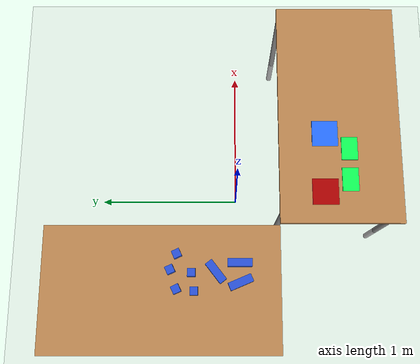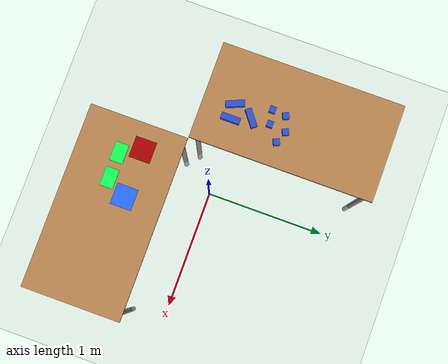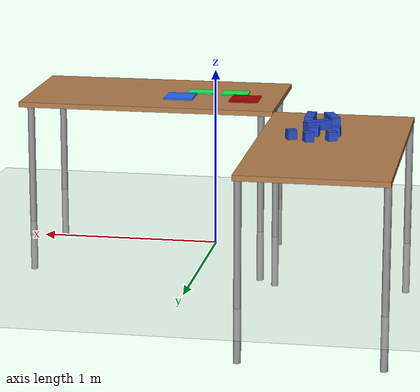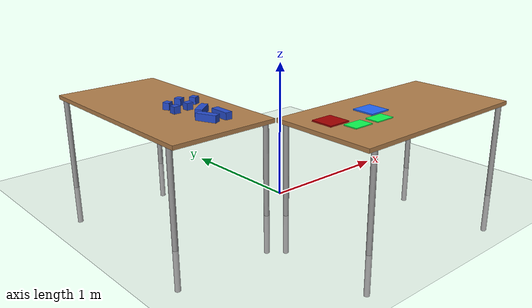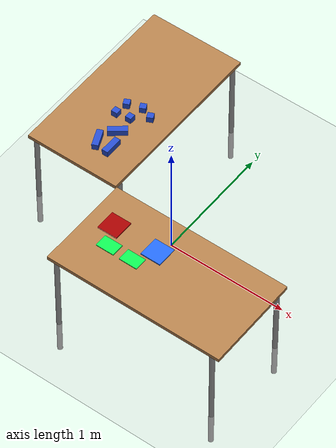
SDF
<sdf version="1.7">
 <world name="default">
  <light name="sun" type="directional">
   <pose>0 0 10 0 -0 0</pose>
   <diffuse>0.8 0.8 0.8 1</diffuse>
   <specular>0.2 0.2 0.2 1</specular>
   <attenuation>
    <range>1000</range>
    <constant>0.9</constant>
    <linear>0.01</linear>
    <quadratic>0.001</quadratic>
   </attenuation>
   <direction>-0.5 0.1 -0.9</direction>
   <spot><inner_angle>0</inner_angle><outer_angle>0</outer_angle><falloff>0</falloff></spot>
  </light>
  <model name="ground_plane">
   <static>1</static>
   <link name="link">
    <collision name="collision">
     <geometry><plane><normal>0 0 1</normal><size>100 100</size></plane></geometry>
     <surface>
      <contact><collide_bitmask>65535</collide_bitmask></contact>
      <friction><ode><mu>100</mu><mu2>50</mu2></ode></friction>
     </surface>
    </collision>
    <visual name="visual">
     <cast_shadows>0</cast_shadows>
     <geometry><plane><normal>0 0 1</normal><size>100 100</size></plane></geometry>
     <material>
      <script><uri>file://media/materials/scripts/gazebo.material</uri><name>Gazebo/Grey</name></script>
     </material>
    </visual>
   </link>
  </model>
  <gravity>0 0 -9.8</gravity>
  <magnetic_field>6e-06 2.3e-05 -4.2e-05</magnetic_field>
  <atmosphere type="adiabatic"/>
  <physics type="ode">
   <max_step_size>0.001</max_step_size>
   <real_time_factor>1</real_time_factor>
   <real_time_update_rate>1000</real_time_update_rate>
  </physics>
  <scene><ambient>0.4 0.4 0.4 1</ambient><background>0.7 0.7 0.7 1</background><shadows>1</shadows></scene>
  <spherical_coordinates>
   <surface_model>EARTH_WGS84</surface_model>
   <latitude_deg>0</latitude_deg>
   <longitude_deg>0</longitude_deg>
   <elevation>0</elevation>
   <heading_deg>0</heading_deg>
  </spherical_coordinates>
  <model name="table">
   <static>1</static>
   <link name="link">
    <collision name="surface">
     <pose>0 0 1 0 -0 0</pose>
     <geometry><box><size>1.5 0.8 0.03</size></box></geometry>
     <surface><friction><ode><mu>0.6</mu><mu2>0.6</mu2></ode></friction></surface>
    </collision>
    <visual name="visual1">
     <pose>0 0 1 0 -0 0</pose>
     <geometry><box><size>1.5 0.8 0.03</size></box></geometry>
     <material>
      <script><uri>file://media/materials/scripts/gazebo.material</uri><name>Gazebo/Wood</name></script>
     </material>
    </visual>
    <collision name="front_left_leg">
     <pose>0.68 0.38 0.5 0 -0 0</pose>
     <geometry><cylinder><radius>0.02</radius><length>1</length></cylinder></geometry>
    </collision>
    <visual name="front_left_leg">
     <pose>0.68 0.38 0.5 0 -0 0</pose>
     <geometry><cylinder><radius>0.02</radius><length>1</length></cylinder></geometry>
     <material>
      <script><uri>file://media/materials/scripts/gazebo.material</uri><name>Gazebo/Grey</name></script>
     </material>
    </visual>
    <collision name="front_right_leg">
     <pose>0.68 -0.38 0.5 0 -0 0</pose>
     <geometry><cylinder><radius>0.02</radius><length>1</length></cylinder></geometry>
    </collision>
    <visual name="front_right_leg">
     <pose>0.68 -0.38 0.5 0 -0 0</pose>
     <geometry><cylinder><radius>0.02</radius><length>1</length></cylinder></geometry>
     <material>
      <script><uri>file://media/materials/scripts/gazebo.material</uri><name>Gazebo/Grey</name></script>
     </material>
    </visual>
    <collision name="back_right_leg">
     <pose>-0.68 -0.38 0.5 0 -0 0</pose>
     <geometry><cylinder><radius>0.02</radius><length>1</length></cylinder></geometry>
    </collision>
    <visual name="back_right_leg">
     <pose>-0.68 -0.38 0.5 0 -0 0</pose>
     <geometry><cylinder><radius>0.02</radius><length>1</length></cylinder></geometry>
     <material>
      <script><uri>file://media/materials/scripts/gazebo.material</uri><name>Gazebo/Grey</name></script>
     </material>
    </visual>
    <collision name="back_left_leg">
     <pose>-0.68 0.38 0.5 0 -0 0</pose>
     <geometry><cylinder><radius>0.02</radius><length>1</length></cylinder></geometry>
    </collision>
    <visual name="back_left_leg">
     <pose>-0.68 0.38 0.5 0 -0 0</pose>
     <geometry><cylinder><radius>0.02</radius><length>1</length></cylinder></geometry>
     <material>
      <script><uri>file://media/materials/scripts/gazebo.material</uri><name>Gazebo/Grey</name></script>
     </material>
    </visual>
   </link>
   <pose>0.468809 -0.673678 -0.3 0 -0 0</pose>
  </model>
  <model name="table_0">
   <static>1</static>
   <link name="link">
    <collision name="surface">
     <pose>0 0 1 0 -0 0</pose>
     <geometry><box><size>1.5 0.8 0.03</size></box></geometry>
     <surface><friction><ode><mu>0.6</mu><mu2>0.6</mu2></ode></friction></surface>
    </collision>
    <visual name="visual1">
     <pose>0 0 1 0 -0 0</pose>
     <geometry><box><size>1.5 0.8 0.03</size></box></geometry>
     <material>
      <script><uri>file://media/materials/scripts/gazebo.material</uri><name>Gazebo/Wood</name></script>
     </material>
    </visual>
    <collision name="front_left_leg">
     <pose>0.68 0.38 0.5 0 -0 0</pose>
     <geometry><cylinder><radius>0.02</radius><length>1</length></cylinder></geometry>
    </collision>
    <visual name="front_left_leg">
     <pose>0.68 0.38 0.5 0 -0 0</pose>
     <geometry><cylinder><radius>0.02</radius><length>1</length></cylinder></geometry>
     <material>
      <script><uri>file://media/materials/scripts/gazebo.material</uri><name>Gazebo/Grey</name></script>
     </material>
    </visual>
    <collision name="front_right_leg">
     <pose>0.68 -0.38 0.5 0 -0 0</pose>
     <geometry><cylinder><radius>0.02</radius><length>1</length></cylinder></geometry>
    </collision>
    <visual name="front_right_leg">
     <pose>0.68 -0.38 0.5 0 -0 0</pose>
     <geometry><cylinder><radius>0.02</radius><length>1</length></cylinder></geometry>
     <material>
      <script><uri>file://media/materials/scripts/gazebo.material</uri><name>Gazebo/Grey</name></script>
     </material>
    </visual>
    <collision name="back_right_leg">
     <pose>-0.68 -0.38 0.5 0 -0 0</pose>
     <geometry><cylinder><radius>0.02</radius><length>1</length></cylinder></geometry>
    </collision>
    <visual name="back_right_leg">
     <pose>-0.68 -0.38 0.5 0 -0 0</pose>
     <geometry><cylinder><radius>0.02</radius><length>1</length></cylinder></geometry>
     <material>
      <script><uri>file://media/materials/scripts/gazebo.material</uri><name>Gazebo/Grey</name></script>
     </material>
    </visual>
    <collision name="back_left_leg">
     <pose>-0.68 0.38 0.5 0 -0 0</pose>
     <geometry><cylinder><radius>0.02</radius><length>1</length></cylinder></geometry>
    </collision>
    <visual name="back_left_leg">
     <pose>-0.68 0.38 0.5 0 -0 0</pose>
     <geometry><cylinder><radius>0.02</radius><length>1</length></cylinder></geometry>
     <material>
      <script><uri>file://media/materials/scripts/gazebo.material</uri><name>Gazebo/Grey</name></script>
     </material>
    </visual>
   </link>
   <pose>-0.69196 0.477516 -0.3 0 0 -1.5708</pose>
  </model>
  <model name="red_plate">
   <link name="link">
    <inertial>
     <mass>1</mass>
     <inertia>
      <ixx>0.166667</ixx>
      <ixy>0</ixy>
      <ixz>0</ixz>
      <iyy>0.166667</iyy>
      <iyz>0</iyz>
      <izz>0.166667</izz>
     </inertia>
    </inertial>
    <visual name="visual">
     <geometry><box><size>0.169497 0.169497 0.009721</size></box></geometry>
     <material>
      <script><name>Gazebo/Grey</name><uri>file://media/materials/scripts/gazebo.material</uri></script>
      <shader type="pixel"><normal_map>__default__</normal_map></shader>
      <ambient>0.643 0 0 1</ambient>
      <diffuse>0.643 0 0 1</diffuse>
      <specular>0.643 0 0 1</specular>
      <emissive>0 0 0 1</emissive>
     </material>
    </visual>
    <collision name="collision">
     <geometry><box><size>0.169497 0.169497 0.009721</size></box></geometry>
     <surface>
      <friction>
       <ode><mu>1</mu><mu2>1</mu2><fdir1>0 0 0</fdir1><slip1>0</slip1><slip2>0</slip2></ode>
       <torsional>
        <coefficient>1</coefficient>
        <patch_radius>0</patch_radius>
        <surface_radius>0</surface_radius>
        <use_patch_radius>1</use_patch_radius>
        <ode><slip>0</slip></ode>
       </torsional>
      </friction>
      <bounce><restitution_coefficient>0</restitution_coefficient><threshold>1e+06</threshold></bounce>
      <contact>
       <collide_without_contact>0</collide_without_contact>
       <collide_without_contact_bitmask>1</collide_without_contact_bitmask>
       <collide_bitmask>1</collide_bitmask>
       <ode>
        <soft_cfm>0</soft_cfm>
        <soft_erp>0.2</soft_erp>
        <kp>1e+13</kp>
        <kd>1</kd>
        <max_vel>0.01</max_vel>
        <min_depth>0</min_depth>
       </ode>
       <bullet>
        <split_impulse>1</split_impulse>
        <split_impulse_penetration_threshold>-0.01</split_impulse_penetration_threshold>
        <soft_cfm>0</soft_cfm>
        <soft_erp>0.2</soft_erp>
        <kp>1e+13</kp>
        <kd>1</kd>
       </bullet>
      </contact>
     </surface>
    </collision>
   </link>
   <static>0</static>
   <pose>-0.076237 -0.56769 0.719861 -0 -2e-06 3.7e-05</pose>
  </model>
  <model name="unit_box_red">
   <link name="link">
    <inertial>
     <mass>0.00013169</mass>
     <inertia><ixx>6e-08</ixx><ixy>0</ixy><ixz>0</ixz><iyy>6e-08</iyy><iyz>0</iyz><izz>6e-08</izz></inertia>
    </inertial>
    <visual name="visual">
     <geometry><box><size>0.050877 0.050877 0.050877</size></box></geometry>
     <material>
      <script><name>Gazebo/Blue</name><uri>file://media/materials/scripts/gazebo.material</uri></script>
      <shader type="pixel"><normal_map>__default__</normal_map></shader>
      <ambient>0.639 0 0 1</ambient>
      <diffuse>0.639 0 0 1</diffuse>
      <specular>0.639 0 0 1</specular>
      <emissive>0 0 0 1</emissive>
     </material>
    </visual>
    <collision name="collision">
     <geometry><box><size>0.050877 0.050877 0.050877</size></box></geometry>
     <surface>
      <friction>
       <ode><mu>50</mu><mu2>50</mu2><fdir1>0 0 0</fdir1><slip1>0</slip1><slip2>0</slip2></ode>
       <torsional>
        <coefficient>1</coefficient>
        <patch_radius>0</patch_radius>
        <surface_radius>0</surface_radius>
        <use_patch_radius>1</use_patch_radius>
        <ode><slip>0</slip></ode>
       </torsional>
      </friction>
      <bounce><restitution_coefficient>0</restitution_coefficient><threshold>1e+06</threshold></bounce>
      <contact>
       <collide_without_contact>0</collide_without_contact>
       <collide_without_contact_bitmask>1</collide_without_contact_bitmask>
       <collide_bitmask>1</collide_bitmask>
       <ode>
        <soft_cfm>0</soft_cfm>
        <soft_erp>0.2</soft_erp>
        <kp>1e+13</kp>
        <kd>1</kd>
        <max_vel>0.01</max_vel>
        <min_depth>0</min_depth>
       </ode>
       <bullet>
        <split_impulse>1</split_impulse>
        <split_impulse_penetration_threshold>-0.01</split_impulse_penetration_threshold>
        <soft_cfm>0</soft_cfm>
        <soft_erp>0.2</soft_erp>
        <kp>1e+13</kp>
        <kd>1</kd>
       </bullet>
      </contact>
     </surface>
    </collision>
   </link>
   <static>0</static>
   <pose>-0.592923 0.286494 0.740431 -8e-06 -7.2e-05 7.5e-05</pose>
  </model>
  <light name="user_directional_light_0" type="directional">
   <pose>-1.54101 4.83803 1 0 -0 0</pose>
   <diffuse>0.5 0.5 0.5 1</diffuse>
   <specular>0.1 0.1 0.1 1</specular>
   <direction>0.1 0.1 -0.9</direction>
   <attenuation>
    <range>20</range>
    <constant>0.5</constant>
    <linear>0.01</linear>
    <quadratic>0.001</quadratic>
   </attenuation>
   <spot><inner_angle>0</inner_angle><outer_angle>0</outer_angle><falloff>0</falloff></spot>
  </light>
  <light name="user_directional_light_1" type="directional">
   <pose>2.08768 -0.242222 1 0 -0 0</pose>
   <diffuse>0.5 0.5 0.5 1</diffuse>
   <specular>0.1 0.1 0.1 1</specular>
   <direction>0.1 0.1 -0.9</direction>
   <attenuation>
    <range>20</range>
    <constant>0.5</constant>
    <linear>0.01</linear>
    <quadratic>0.001</quadratic>
   </attenuation>
   <spot><inner_angle>0</inner_angle><outer_angle>0</outer_angle><falloff>0</falloff></spot>
  </light>
  <model name="green_plate">
   <link name="link">
    <inertial>
     <mass>1</mass>
     <inertia>
      <ixx>0.166667</ixx>
      <ixy>0</ixy>
      <ixz>0</ixz>
      <iyy>0.166667</iyy>
      <iyz>0</iyz>
      <izz>0.166667</izz>
     </inertia>
    </inertial>
    <visual name="visual">
     <geometry><box><size>0.154588 0.106633 0.006976</size></box></geometry>
     <material>
      <script><name>Gazebo/Grey</name><uri>file://media/materials/scripts/gazebo.material</uri></script>
      <shader type="pixel"><normal_map>__default__</normal_map></shader>
      <ambient>0.052 1 0.32 1</ambient>
      <diffuse>0.052 1 0.32 1</diffuse>
      <specular>0 0 0 1</specular>
      <emissive>0 0 0 1</emissive>
     </material>
    </visual>
    <collision name="collision">
     <geometry><box><size>0.154588 0.106633 0.006976</size></box></geometry>
     <surface>
      <friction>
       <ode><mu>1</mu><mu2>1</mu2><fdir1>0 0 0</fdir1><slip1>0</slip1><slip2>0</slip2></ode>
       <torsional>
        <coefficient>1</coefficient>
        <patch_radius>0</patch_radius>
        <surface_radius>0</surface_radius>
        <use_patch_radius>1</use_patch_radius>
        <ode><slip>0</slip></ode>
       </torsional>
      </friction>
      <bounce><restitution_coefficient>0</restitution_coefficient><threshold>1e+06</threshold></bounce>
      <contact>
       <collide_without_contact>0</collide_without_contact>
       <collide_without_contact_bitmask>1</collide_without_contact_bitmask>
       <collide_bitmask>1</collide_bitmask>
       <ode>
        <soft_cfm>0</soft_cfm>
        <soft_erp>0.2</soft_erp>
        <kp>1e+13</kp>
        <kd>1</kd>
        <max_vel>0.01</max_vel>
        <min_depth>0</min_depth>
       </ode>
       <bullet>
        <split_impulse>1</split_impulse>
        <split_impulse_penetration_threshold>-0.01</split_impulse_penetration_threshold>
        <soft_cfm>0</soft_cfm>
        <soft_erp>0.2</soft_erp>
        <kp>1e+13</kp>
        <kd>1</kd>
       </bullet>
      </contact>
     </surface>
    </collision>
   </link>
   <static>0</static>
   <pose>0.005739 -0.732068 0.718488 2e-06 -0 8.9e-05</pose>
  </model>
  <model name="green_plate_clone">
   <link name="link">
    <inertial>
     <mass>1</mass>
     <inertia>
      <ixx>0.166667</ixx>
      <ixy>0</ixy>
      <ixz>0</ixz>
      <iyy>0.166667</iyy>
      <iyz>0</iyz>
      <izz>0.166667</izz>
     </inertia>
    </inertial>
    <visual name="visual">
     <geometry><box><size>0.154588 0.106633 0.006976</size></box></geometry>
     <material>
      <script><name>Gazebo/Grey</name><uri>file://media/materials/scripts/gazebo.material</uri></script>
      <shader type="pixel"><normal_map>__default__</normal_map></shader>
      <ambient>0.052 1 0.32 1</ambient>
      <diffuse>0.052 1 0.32 1</diffuse>
      <specular>0 0 0 1</specular>
      <emissive>0 0 0 1</emissive>
     </material>
    </visual>
    <collision name="collision">
     <geometry><box><size>0.154588 0.106633 0.006976</size></box></geometry>
     <surface>
      <friction>
       <ode><mu>1</mu><mu2>1</mu2><fdir1>0 0 0</fdir1><slip1>0</slip1><slip2>0</slip2></ode>
       <torsional>
        <coefficient>1</coefficient>
        <patch_radius>0</patch_radius>
        <surface_radius>0</surface_radius>
        <use_patch_radius>1</use_patch_radius>
        <ode><slip>0</slip></ode>
       </torsional>
      </friction>
      <bounce><restitution_coefficient>0</restitution_coefficient><threshold>1e+06</threshold></bounce>
      <contact>
       <collide_without_contact>0</collide_without_contact>
       <collide_without_contact_bitmask>1</collide_without_contact_bitmask>
       <collide_bitmask>1</collide_bitmask>
       <ode>
        <soft_cfm>0</soft_cfm>
        <soft_erp>0.2</soft_erp>
        <kp>1e+13</kp>
        <kd>1</kd>
        <max_vel>0.01</max_vel>
        <min_depth>0</min_depth>
       </ode>
       <bullet>
        <split_impulse>1</split_impulse>
        <split_impulse_penetration_threshold>-0.01</split_impulse_penetration_threshold>
        <soft_cfm>0</soft_cfm>
        <soft_erp>0.2</soft_erp>
        <kp>1e+13</kp>
        <kd>1</kd>
       </bullet>
      </contact>
     </surface>
    </collision>
   </link>
   <static>0</static>
   <pose>0.212759 -0.733936 0.718488 2e-06 -0 8.1e-05</pose>
  </model>
  <model name="blue_plate">
   <link name="link">
    <inertial>
     <mass>1</mass>
     <inertia>
      <ixx>0.166667</ixx>
      <ixy>0</ixy>
      <ixz>0</ixz>
      <iyy>0.166667</iyy>
      <iyz>0</iyz>
      <izz>0.166667</izz>
     </inertia>
    </inertial>
    <visual name="visual">
     <geometry><box><size>0.169497 0.169497 0.009721</size></box></geometry>
     <material>
      <script><name>Gazebo/Grey</name><uri>file://media/materials/scripts/gazebo.material</uri></script>
      <shader type="pixel"><normal_map>__default__</normal_map></shader>
      <ambient>0.14 0.412 1 1</ambient>
      <diffuse>0.14 0.412 1 1</diffuse>
      <specular>0 0 0 1</specular>
      <emissive>0 0 0 1</emissive>
     </material>
    </visual>
    <collision name="collision">
     <geometry><box><size>0.169497 0.169497 0.009721</size></box></geometry>
     <surface>
      <friction>
       <ode><mu>1</mu><mu2>1</mu2><fdir1>0 0 0</fdir1><slip1>0</slip1><slip2>0</slip2></ode>
       <torsional>
        <coefficient>1</coefficient>
        <patch_radius>0</patch_radius>
        <surface_radius>0</surface_radius>
        <use_patch_radius>1</use_patch_radius>
        <ode><slip>0</slip></ode>
       </torsional>
      </friction>
      <bounce><restitution_coefficient>0</restitution_coefficient><threshold>1e+06</threshold></bounce>
      <contact>
       <collide_without_contact>0</collide_without_contact>
       <collide_without_contact_bitmask>1</collide_without_contact_bitmask>
       <collide_bitmask>1</collide_bitmask>
       <ode>
        <soft_cfm>0</soft_cfm>
        <soft_erp>0.2</soft_erp>
        <kp>1e+13</kp>
        <kd>1</kd>
        <max_vel>0.01</max_vel>
        <min_depth>0</min_depth>
       </ode>
       <bullet>
        <split_impulse>1</split_impulse>
        <split_impulse_penetration_threshold>-0.01</split_impulse_penetration_threshold>
        <soft_cfm>0</soft_cfm>
        <soft_erp>0.2</soft_erp>
        <kp>1e+13</kp>
        <kd>1</kd>
       </bullet>
      </contact>
     </surface>
    </collision>
   </link>
   <static>0</static>
   <pose>0.313357 -0.575396 0.719862 0 -2.1e-05 5.1e-05</pose>
  </model>
  <model name="unit_box_red_clone">
   <link name="link">
    <inertial>
     <mass>0.00013169</mass>
     <inertia><ixx>6e-08</ixx><ixy>0</ixy><ixz>0</ixz><iyy>6e-08</iyy><iyz>0</iyz><izz>6e-08</izz></inertia>
    </inertial>
    <visual name="visual">
     <geometry><box><size>0.050877 0.050877 0.050877</size></box></geometry>
     <material>
      <script><name>Gazebo/Blue</name><uri>file://media/materials/scripts/gazebo.material</uri></script>
      <shader type="pixel"><normal_map>__default__</normal_map></shader>
      <ambient>0.639 0 0 1</ambient>
      <diffuse>0.639 0 0 1</diffuse>
      <specular>0.639 0 0 1</specular>
      <emissive>0 0 0 1</emissive>
     </material>
    </visual>
    <collision name="collision">
     <geometry><box><size>0.050877 0.050877 0.050877</size></box></geometry>
     <surface>
      <friction>
       <ode><mu>50</mu><mu2>50</mu2><fdir1>0 0 0</fdir1><slip1>0</slip1><slip2>0</slip2></ode>
       <torsional>
        <coefficient>1</coefficient>
        <patch_radius>0</patch_radius>
        <surface_radius>0</surface_radius>
        <use_patch_radius>1</use_patch_radius>
        <ode><slip>0</slip></ode>
       </torsional>
      </friction>
      <bounce><restitution_coefficient>0</restitution_coefficient><threshold>1e+06</threshold></bounce>
      <contact>
       <collide_without_contact>0</collide_without_contact>
       <collide_without_contact_bitmask>1</collide_without_contact_bitmask>
       <collide_bitmask>1</collide_bitmask>
       <ode>
        <soft_cfm>0</soft_cfm>
        <soft_erp>0.2</soft_erp>
        <kp>1e+13</kp>
        <kd>1</kd>
        <max_vel>0.01</max_vel>
        <min_depth>0</min_depth>
       </ode>
       <bullet>
        <split_impulse>1</split_impulse>
        <split_impulse_penetration_threshold>-0.01</split_impulse_penetration_threshold>
        <soft_cfm>0</soft_cfm>
        <soft_erp>0.2</soft_erp>
        <kp>1e+13</kp>
        <kd>1</kd>
       </bullet>
      </contact>
     </surface>
    </collision>
   </link>
   <static>0</static>
   <pose>-0.477371 0.379357 0.740434 -9.5e-05 -2.7e-05 0.431401</pose>
  </model>
  <model name="blue_cube">
   <link name="link">
    <inertial>
     <mass>0.00039528</mass>
     <inertia><ixx>8.5e-07</ixx><ixy>0</ixy><ixz>0</ixz><iyy>1.7e-07</iyy><iyz>0</iyz><izz>8.5e-07</izz></inertia>
    </inertial>
    <visual name="visual">
     <geometry><box><size>0.050877 0.152723 0.050877</size></box></geometry>
     <material>
      <script><name>Gazebo/Blue</name><uri>file://media/materials/scripts/gazebo.material</uri></script>
      <shader type="pixel"><normal_map>__default__</normal_map></shader>
      <ambient>0.14 0.412 1 1</ambient>
      <diffuse>0.14 0.412 1 1</diffuse>
      <specular>0.639 0 0 1</specular>
      <emissive>0 0 0 1</emissive>
     </material>
    </visual>
    <collision name="collision">
     <geometry><box><size>0.050877 0.152723 0.050877</size></box></geometry>
     <surface>
      <friction>
       <ode><mu>50</mu><mu2>50</mu2><fdir1>0 0 0</fdir1><slip1>0</slip1><slip2>0</slip2></ode>
       <torsional>
        <coefficient>1</coefficient>
        <patch_radius>0</patch_radius>
        <surface_radius>0</surface_radius>
        <use_patch_radius>1</use_patch_radius>
        <ode><slip>0</slip></ode>
       </torsional>
      </friction>
      <bounce><restitution_coefficient>0</restitution_coefficient><threshold>1e+06</threshold></bounce>
      <contact>
       <collide_without_contact>0</collide_without_contact>
       <collide_without_contact_bitmask>1</collide_without_contact_bitmask>
       <collide_bitmask>1</collide_bitmask>
       <ode>
        <soft_cfm>0</soft_cfm>
        <soft_erp>0.2</soft_erp>
        <kp>1e+13</kp>
        <kd>1</kd>
        <max_vel>0.01</max_vel>
        <min_depth>0</min_depth>
       </ode>
       <bullet>
        <split_impulse>1</split_impulse>
        <split_impulse_penetration_threshold>-0.01</split_impulse_penetration_threshold>
        <soft_cfm>0</soft_cfm>
        <soft_erp>0.2</soft_erp>
        <kp>1e+13</kp>
        <kd>1</kd>
       </bullet>
      </contact>
     </surface>
    </collision>
   </link>
   <static>0</static>
   <pose>-0.653253 -0.019416 0.740432 -0 -5.2e-05 0.402543</pose>
  </model>
  <model name="blue_cube_clone">
   <link name="link">
    <inertial>
     <mass>0.00039528</mass>
     <inertia><ixx>8.5e-07</ixx><ixy>0</ixy><ixz>0</ixz><iyy>1.7e-07</iyy><iyz>0</iyz><izz>8.5e-07</izz></inertia>
    </inertial>
    <visual name="visual">
     <geometry><box><size>0.050877 0.152723 0.050877</size></box></geometry>
     <material>
      <script><name>Gazebo/Blue</name><uri>file://media/materials/scripts/gazebo.material</uri></script>
      <shader type="pixel"><normal_map>__default__</normal_map></shader>
      <ambient>0.14 0.412 1 1</ambient>
      <diffuse>0.14 0.412 1 1</diffuse>
      <specular>0.639 0 0 1</specular>
      <emissive>0 0 0 1</emissive>
     </material>
    </visual>
    <collision name="collision">
     <geometry><box><size>0.050877 0.152723 0.050877</size></box></geometry>
     <surface>
      <friction>
       <ode><mu>50</mu><mu2>50</mu2><fdir1>0 0 0</fdir1><slip1>0</slip1><slip2>0</slip2></ode>
       <torsional>
        <coefficient>1</coefficient>
        <patch_radius>0</patch_radius>
        <surface_radius>0</surface_radius>
        <use_patch_radius>1</use_patch_radius>
        <ode><slip>0</slip></ode>
       </torsional>
      </friction>
      <bounce><restitution_coefficient>0</restitution_coefficient><threshold>1e+06</threshold></bounce>
      <contact>
       <collide_without_contact>0</collide_without_contact>
       <collide_without_contact_bitmask>1</collide_without_contact_bitmask>
       <collide_bitmask>1</collide_bitmask>
       <ode>
        <soft_cfm>0</soft_cfm>
        <soft_erp>0.2</soft_erp>
        <kp>1e+13</kp>
        <kd>1</kd>
        <max_vel>0.01</max_vel>
        <min_depth>0</min_depth>
       </ode>
       <bullet>
        <split_impulse>1</split_impulse>
        <split_impulse_penetration_threshold>-0.01</split_impulse_penetration_threshold>
        <soft_cfm>0</soft_cfm>
        <soft_erp>0.2</soft_erp>
        <kp>1e+13</kp>
        <kd>1</kd>
       </bullet>
      </contact>
     </surface>
    </collision>
   </link>
   <static>0</static>
   <pose>-0.588197 0.134276 0.740433 0 8e-05 -0.910804</pose>
  </model>
  <model name="unit_box_red_clone_0">
   <link name="link">
    <inertial>
     <mass>0.00013169</mass>
     <inertia><ixx>6e-08</ixx><ixy>0</ixy><ixz>0</ixz><iyy>6e-08</iyy><iyz>0</iyz><izz>6e-08</izz></inertia>
    </inertial>
    <visual name="visual">
     <geometry><box><size>0.050877 0.050877 0.050877</size></box></geometry>
     <material>
      <script><name>Gazebo/Blue</name><uri>file://media/materials/scripts/gazebo.material</uri></script>
      <shader type="pixel"><normal_map>__default__</normal_map></shader>
      <ambient>0.639 0 0 1</ambient>
      <diffuse>0.639 0 0 1</diffuse>
      <specular>0.639 0 0 1</specular>
      <emissive>0 0 0 1</emissive>
     </material>
    </visual>
    <collision name="collision">
     <geometry><box><size>0.050877 0.050877 0.050877</size></box></geometry>
     <surface>
      <friction>
       <ode><mu>50</mu><mu2>50</mu2><fdir1>0 0 0</fdir1><slip1>0</slip1><slip2>0</slip2></ode>
       <torsional>
        <coefficient>1</coefficient>
        <patch_radius>0</patch_radius>
        <surface_radius>0</surface_radius>
        <use_patch_radius>1</use_patch_radius>
        <ode><slip>0</slip></ode>
       </torsional>
      </friction>
      <bounce><restitution_coefficient>0</restitution_coefficient><threshold>1e+06</threshold></bounce>
      <contact>
       <collide_without_contact>0</collide_without_contact>
       <collide_without_contact_bitmask>1</collide_without_contact_bitmask>
       <collide_bitmask>1</collide_bitmask>
       <ode>
        <soft_cfm>0</soft_cfm>
        <soft_erp>0.2</soft_erp>
        <kp>1e+13</kp>
        <kd>1</kd>
        <max_vel>0.01</max_vel>
        <min_depth>0</min_depth>
       </ode>
       <bullet>
        <split_impulse>1</split_impulse>
        <split_impulse_penetration_threshold>-0.01</split_impulse_penetration_threshold>
        <soft_cfm>0</soft_cfm>
        <soft_erp>0.2</soft_erp>
        <kp>1e+13</kp>
        <kd>1</kd>
       </bullet>
      </contact>
     </surface>
    </collision>
   </link>
   <static>0</static>
   <pose>-0.707312 0.269246 0.740435 -6.7e-05 -5.7e-05 0.000114</pose>
  </model>
  <model name="unit_box_red_clone_clone">
   <link name="link">
    <inertial>
     <mass>0.00013169</mass>
     <inertia><ixx>6e-08</ixx><ixy>0</ixy><ixz>0</ixz><iyy>6e-08</iyy><iyz>0</iyz><izz>6e-08</izz></inertia>
    </inertial>
    <visual name="visual">
     <geometry><box><size>0.050877 0.050877 0.050877</size></box></geometry>
     <material>
      <script><name>Gazebo/Blue</name><uri>file://media/materials/scripts/gazebo.material</uri></script>
      <shader type="pixel"><normal_map>__default__</normal_map></shader>
      <ambient>0.639 0 0 1</ambient>
      <diffuse>0.639 0 0 1</diffuse>
      <specular>0.639 0 0 1</specular>
      <emissive>0 0 0 1</emissive>
     </material>
    </visual>
    <collision name="collision">
     <geometry><box><size>0.050877 0.050877 0.050877</size></box></geometry>
     <surface>
      <friction>
       <ode><mu>50</mu><mu2>50</mu2><fdir1>0 0 0</fdir1><slip1>0</slip1><slip2>0</slip2></ode>
       <torsional>
        <coefficient>1</coefficient>
        <patch_radius>0</patch_radius>
        <surface_radius>0</surface_radius>
        <use_patch_radius>1</use_patch_radius>
        <ode><slip>0</slip></ode>
       </torsional>
      </friction>
      <bounce><restitution_coefficient>0</restitution_coefficient><threshold>1e+06</threshold></bounce>
      <contact>
       <collide_without_contact>0</collide_without_contact>
       <collide_without_contact_bitmask>1</collide_without_contact_bitmask>
       <collide_bitmask>1</collide_bitmask>
       <ode>
        <soft_cfm>0</soft_cfm>
        <soft_erp>0.2</soft_erp>
        <kp>1e+13</kp>
        <kd>1</kd>
        <max_vel>0.01</max_vel>
        <min_depth>0</min_depth>
       </ode>
       <bullet>
        <split_impulse>1</split_impulse>
        <split_impulse_penetration_threshold>-0.01</split_impulse_penetration_threshold>
        <soft_cfm>0</soft_cfm>
        <soft_erp>0.2</soft_erp>
        <kp>1e+13</kp>
        <kd>1</kd>
       </bullet>
      </contact>
     </surface>
    </collision>
   </link>
   <static>0</static>
   <pose>-0.575304 0.419351 0.740429 -2e-06 -6e-06 0.431522</pose>
  </model>
  <model name="unit_box_red_clone_clone_clone">
   <link name="link">
    <inertial>
     <mass>0.00013169</mass>
     <inertia><ixx>6e-08</ixx><ixy>0</ixy><ixz>0</ixz><iyy>6e-08</iyy><iyz>0</iyz><izz>6e-08</izz></inertia>
    </inertial>
    <visual name="visual">
     <geometry><box><size>0.050877 0.050877 0.050877</size></box></geometry>
     <material>
      <script><name>Gazebo/Blue</name><uri>file://media/materials/scripts/gazebo.material</uri></script>
      <shader type="pixel"><normal_map>__default__</normal_map></shader>
      <ambient>0.639 0 0 1</ambient>
      <diffuse>0.639 0 0 1</diffuse>
      <specular>0.639 0 0 1</specular>
      <emissive>0 0 0 1</emissive>
     </material>
    </visual>
    <collision name="collision">
     <geometry><box><size>0.050877 0.050877 0.050877</size></box></geometry>
     <surface>
      <friction>
       <ode><mu>50</mu><mu2>50</mu2><fdir1>0 0 0</fdir1><slip1>0</slip1><slip2>0</slip2></ode>
       <torsional>
        <coefficient>1</coefficient>
        <patch_radius>0</patch_radius>
        <surface_radius>0</surface_radius>
        <use_patch_radius>1</use_patch_radius>
        <ode><slip>0</slip></ode>
       </torsional>
      </friction>
      <bounce><restitution_coefficient>0</restitution_coefficient><threshold>1e+06</threshold></bounce>
      <contact>
       <collide_without_contact>0</collide_without_contact>
       <collide_without_contact_bitmask>1</collide_without_contact_bitmask>
       <collide_bitmask>1</collide_bitmask>
       <ode>
        <soft_cfm>0</soft_cfm>
        <soft_erp>0.2</soft_erp>
        <kp>1e+13</kp>
        <kd>1</kd>
        <max_vel>0.01</max_vel>
        <min_depth>0</min_depth>
       </ode>
       <bullet>
        <split_impulse>1</split_impulse>
        <split_impulse_penetration_threshold>-0.01</split_impulse_penetration_threshold>
        <soft_cfm>0</soft_cfm>
        <soft_erp>0.2</soft_erp>
        <kp>1e+13</kp>
        <kd>1</kd>
       </bullet>
      </contact>
     </surface>
    </collision>
   </link>
   <static>0</static>
   <pose>-0.695007 0.38039 0.740435 2e-05 -7.6e-05 0.446469</pose>
  </model>
  <model name="blue_cube_clone_clone">
   <link name="link">
    <inertial>
     <mass>0.00039528</mass>
     <inertia><ixx>8.5e-07</ixx><ixy>0</ixy><ixz>0</ixz><iyy>1.7e-07</iyy><iyz>0</iyz><izz>8.5e-07</izz></inertia>
    </inertial>
    <visual name="visual">
     <geometry><box><size>0.050877 0.152723 0.050877</size></box></geometry>
     <material>
      <script><name>Gazebo/Blue</name><uri>file://media/materials/scripts/gazebo.material</uri></script>
      <shader type="pixel"><normal_map>__default__</normal_map></shader>
      <ambient>0.14 0.412 1 1</ambient>
      <diffuse>0.14 0.412 1 1</diffuse>
      <specular>0.639 0 0 1</specular>
      <emissive>0 0 0 1</emissive>
     </material>
    </visual>
    <collision name="collision">
     <geometry><box><size>0.050877 0.152723 0.050877</size></box></geometry>
     <surface>
      <friction>
       <ode><mu>50</mu><mu2>50</mu2><fdir1>0 0 0</fdir1><slip1>0</slip1><slip2>0</slip2></ode>
       <torsional>
        <coefficient>1</coefficient>
        <patch_radius>0</patch_radius>
        <surface_radius>0</surface_radius>
        <use_patch_radius>1</use_patch_radius>
        <ode><slip>0</slip></ode>
       </torsional>
      </friction>
      <bounce><restitution_coefficient>0</restitution_coefficient><threshold>1e+06</threshold></bounce>
      <contact>
       <collide_without_contact>0</collide_without_contact>
       <collide_without_contact_bitmask>1</collide_without_contact_bitmask>
       <collide_bitmask>1</collide_bitmask>
       <ode>
        <soft_cfm>0</soft_cfm>
        <soft_erp>0.2</soft_erp>
        <kp>1e+13</kp>
        <kd>1</kd>
        <max_vel>0.01</max_vel>
        <min_depth>0</min_depth>
       </ode>
       <bullet>
        <split_impulse>1</split_impulse>
        <split_impulse_penetration_threshold>-0.01</split_impulse_penetration_threshold>
        <soft_cfm>0</soft_cfm>
        <soft_erp>0.2</soft_erp>
        <kp>1e+13</kp>
        <kd>1</kd>
       </bullet>
      </contact>
     </surface>
    </collision>
   </link>
   <static>0</static>
   <pose>-0.532212 -0.015166 0.740438 -0 2.8e-05 3.14153</pose>
  </model>
 </world>
</sdf>
